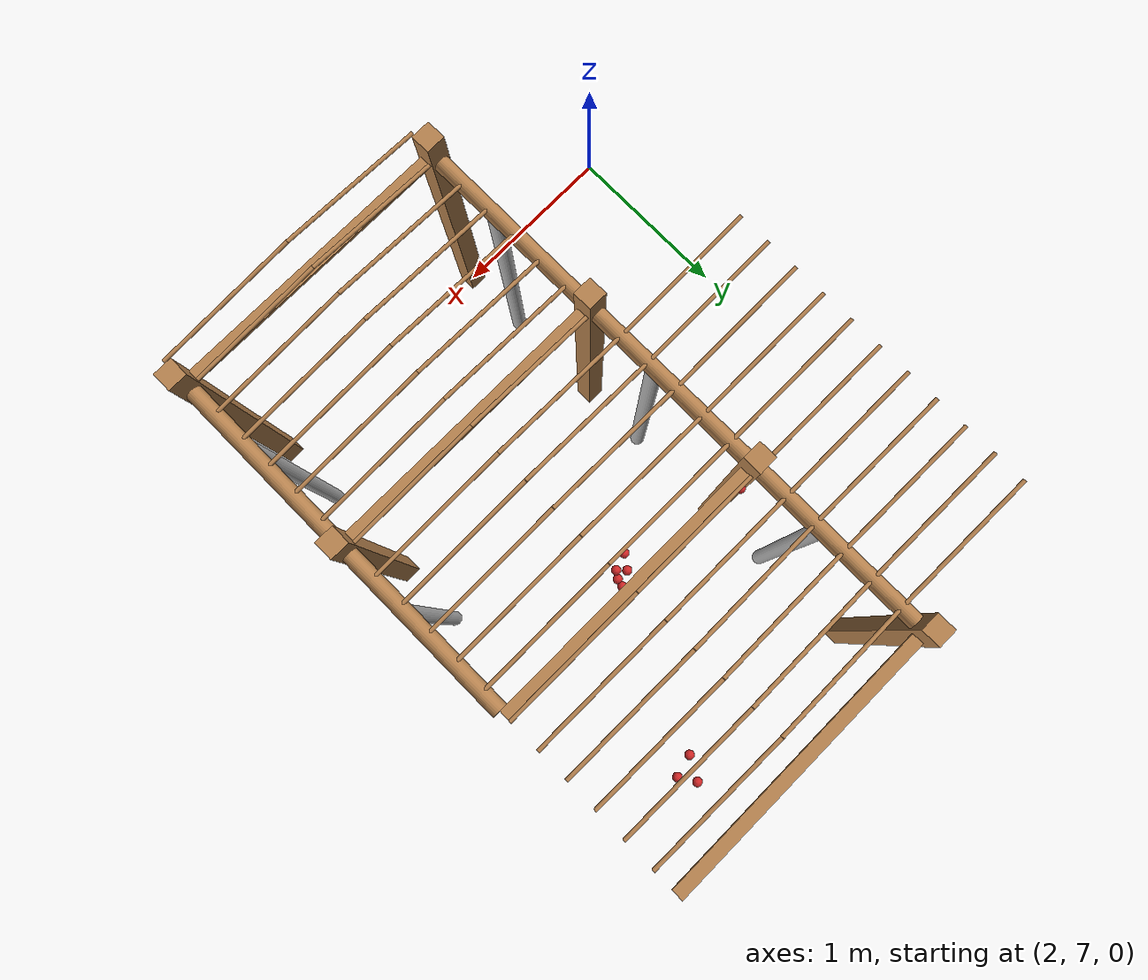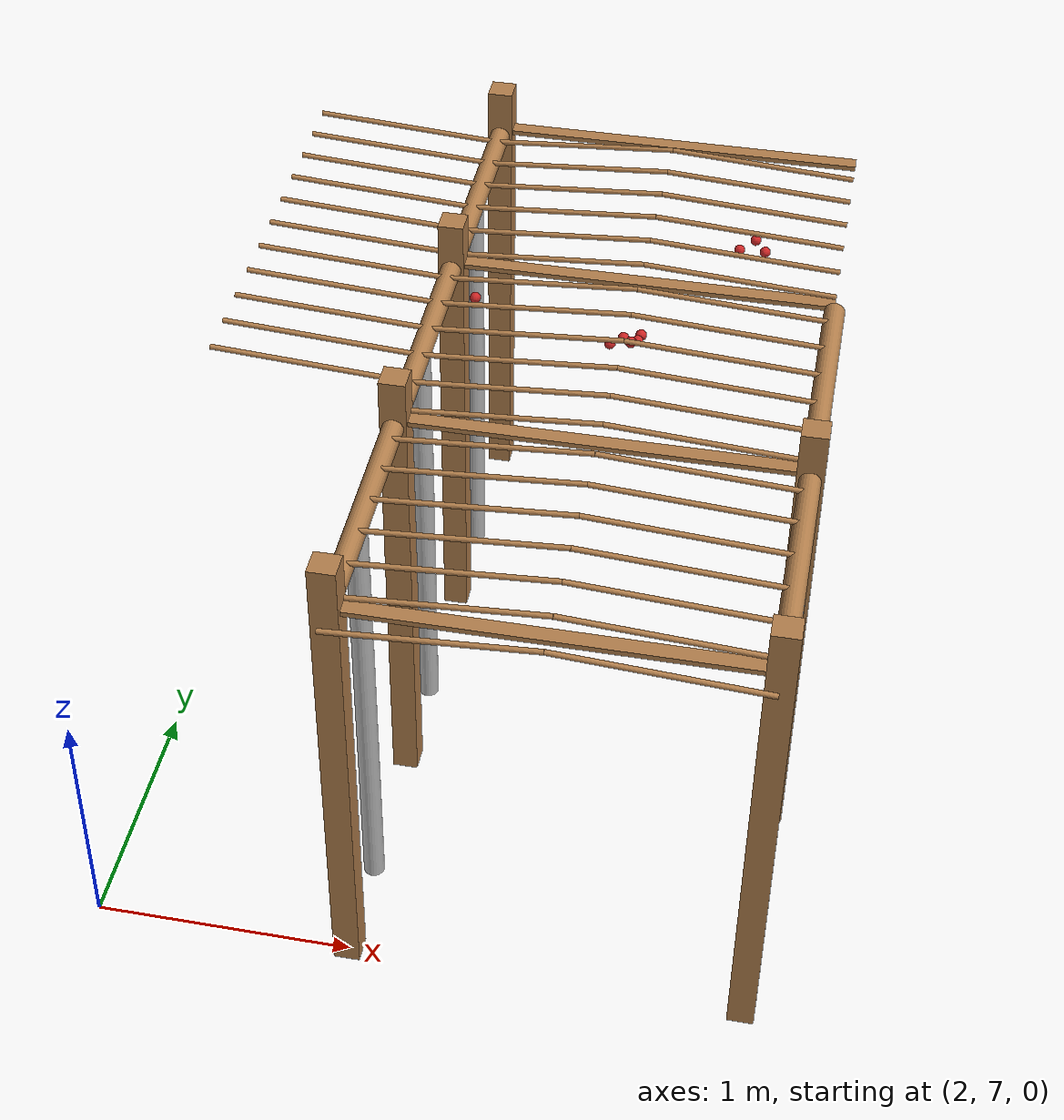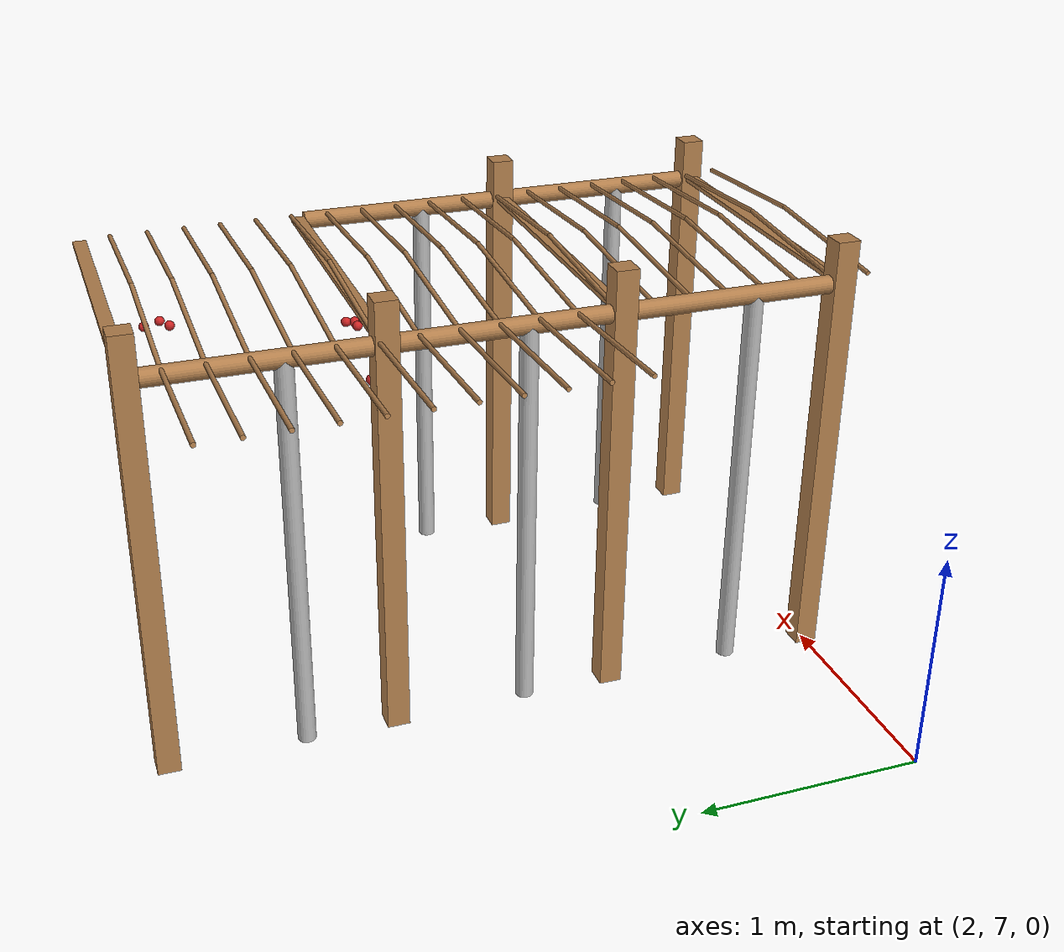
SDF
<sdf version="1.4">
 <model name="pergola">
  <include><name>post_29</name><pose>3.0 7.0 0 0 0 0</pose><uri>model://post</uri></include>
  <include><name>post_30</name><pose>3.0 8.0 0 0 0 0</pose><uri>model://post</uri></include>
  <include><name>post_31</name><pose>3.0 9.0 0 0 0 0</pose><uri>model://post</uri></include>
  <include><name>post_32</name><pose>3.0 10.0 0 0 0 0</pose><uri>model://post</uri></include>
  <include><name>post_40</name><pose>4.5 7.0 0 0 0 0</pose><uri>model://post</uri></include>
  <include><name>post_41</name><pose>4.5 8.0 0 0 0 0</pose><uri>model://post</uri></include>
  <link name="beam_29">
   <pose>3.75 7.0 1.81 0 0 0</pose>
   <collision name="collision"><geometry><box><size>1.5 0.06 0.02</size></box></geometry></collision>
   <visual name="visual">
    <geometry><box><size>1.5 0.06 0.02</size></box></geometry>
    <material><script><name>Gazebo/Wood</name></script></material>
   </visual>
   <inertial>
    <mass>5</mass>
    <inertia>
     <ixx>0.0016666666666666668</ixx>
     <ixy>0.0</ixy>
     <ixz>0.0</ixz>
     <iyy>0.9390000000000001</iyy>
     <iyz>0.0</iyz>
     <izz>0.9376666666666665</izz>
    </inertia>
   </inertial>
  </link>
  <link name="beam_30">
   <pose>3.75 8.0 1.81 0 0 0</pose>
   <collision name="collision"><geometry><box><size>1.5 0.06 0.02</size></box></geometry></collision>
   <visual name="visual">
    <geometry><box><size>1.5 0.06 0.02</size></box></geometry>
    <material><script><name>Gazebo/Wood</name></script></material>
   </visual>
   <inertial>
    <mass>5</mass>
    <inertia>
     <ixx>0.0016666666666666668</ixx>
     <ixy>0.0</ixy>
     <ixz>0.0</ixz>
     <iyy>0.9390000000000001</iyy>
     <iyz>0.0</iyz>
     <izz>0.9376666666666665</izz>
    </inertia>
   </inertial>
  </link>
  <link name="beam_31">
   <pose>3.75 9.0 1.81 0 0 0</pose>
   <collision name="collision"><geometry><box><size>1.5 0.06 0.02</size></box></geometry></collision>
   <visual name="visual">
    <geometry><box><size>1.5 0.06 0.02</size></box></geometry>
    <material><script><name>Gazebo/Wood</name></script></material>
   </visual>
   <inertial>
    <mass>5</mass>
    <inertia>
     <ixx>0.0016666666666666668</ixx>
     <ixy>0.0</ixy>
     <ixz>0.0</ixz>
     <iyy>0.9390000000000001</iyy>
     <iyz>0.0</iyz>
     <izz>0.9376666666666665</izz>
    </inertia>
   </inertial>
  </link>
  <link name="beam_32">
   <pose>3.75 10.0 1.81 0 0 0</pose>
   <collision name="collision"><geometry><box><size>1.5 0.06 0.02</size></box></geometry></collision>
   <visual name="visual">
    <geometry><box><size>1.5 0.06 0.02</size></box></geometry>
    <material><script><name>Gazebo/Wood</name></script></material>
   </visual>
   <inertial>
    <mass>5</mass>
    <inertia>
     <ixx>0.0016666666666666668</ixx>
     <ixy>0.0</ixy>
     <ixz>0.0</ixz>
     <iyy>0.9390000000000001</iyy>
     <iyz>0.0</iyz>
     <izz>0.9376666666666665</izz>
    </inertia>
   </inertial>
  </link>
  <include><name>tree_27</name><pose>3.0 7.4 0 0 0 0</pose><uri>model://tree_trunk</uri></include>
  <include><name>tree_28</name><pose>3.0 8.4 0 0 0 0</pose><uri>model://tree_trunk</uri></include>
  <include><name>tree_29</name><pose>3.0 9.4 0 0 0 0</pose><uri>model://tree_trunk</uri></include>
  <include><name>tree_37</name><pose>4.5 7.4 0 0 0 0</pose><uri>model://tree_trunk</uri></include>
  <include><name>tree_38</name><pose>4.5 8.4 0 0 0 0</pose><uri>model://tree_trunk</uri></include>
  <link name="baseBranch_27">
   <pose>3.0 7.5 1.8 1.5707963267948966 0 0</pose>
   <collision name="collision">
    <geometry><cylinder><radius>0.04</radius><length>0.94</length></cylinder></geometry>
   </collision>
   <visual name="visual">
    <geometry><cylinder><radius>0.04</radius><length>0.94</length></cylinder></geometry>
    <material><script><name>Gazebo/WoodFloor</name></script></material>
   </visual>
   <inertial>
    <mass>10</mass>
    <inertia>
     <ixx>0.7403333333333334</ixx>
     <ixy>0.0</ixy>
     <ixz>0.0</ixz>
     <iyy>0.7403333333333334</iyy>
     <iyz>0.0</iyz>
     <izz>0.008</izz>
    </inertia>
   </inertial>
  </link>
  <link name="baseBranch_28">
   <pose>3.0 8.5 1.8 1.5707963267948966 0 0</pose>
   <collision name="collision">
    <geometry><cylinder><radius>0.04</radius><length>0.94</length></cylinder></geometry>
   </collision>
   <visual name="visual">
    <geometry><cylinder><radius>0.04</radius><length>0.94</length></cylinder></geometry>
    <material><script><name>Gazebo/WoodFloor</name></script></material>
   </visual>
   <inertial>
    <mass>10</mass>
    <inertia>
     <ixx>0.7403333333333334</ixx>
     <ixy>0.0</ixy>
     <ixz>0.0</ixz>
     <iyy>0.7403333333333334</iyy>
     <iyz>0.0</iyz>
     <izz>0.008</izz>
    </inertia>
   </inertial>
  </link>
  <link name="baseBranch_29">
   <pose>3.0 9.5 1.8 1.5707963267948966 0 0</pose>
   <collision name="collision">
    <geometry><cylinder><radius>0.04</radius><length>0.94</length></cylinder></geometry>
   </collision>
   <visual name="visual">
    <geometry><cylinder><radius>0.04</radius><length>0.94</length></cylinder></geometry>
    <material><script><name>Gazebo/WoodFloor</name></script></material>
   </visual>
   <inertial>
    <mass>10</mass>
    <inertia>
     <ixx>0.7403333333333334</ixx>
     <ixy>0.0</ixy>
     <ixz>0.0</ixz>
     <iyy>0.7403333333333334</iyy>
     <iyz>0.0</iyz>
     <izz>0.008</izz>
    </inertia>
   </inertial>
  </link>
  <link name="baseBranch_37">
   <pose>4.5 7.5 1.8 1.5707963267948966 0 0</pose>
   <collision name="collision">
    <geometry><cylinder><radius>0.04</radius><length>0.94</length></cylinder></geometry>
   </collision>
   <visual name="visual">
    <geometry><cylinder><radius>0.04</radius><length>0.94</length></cylinder></geometry>
    <material><script><name>Gazebo/WoodFloor</name></script></material>
   </visual>
   <inertial>
    <mass>10</mass>
    <inertia>
     <ixx>0.7403333333333334</ixx>
     <ixy>0.0</ixy>
     <ixz>0.0</ixz>
     <iyy>0.7403333333333334</iyy>
     <iyz>0.0</iyz>
     <izz>0.008</izz>
    </inertia>
   </inertial>
  </link>
  <link name="baseBranch_38">
   <pose>4.5 8.5 1.8 1.5707963267948966 0 0</pose>
   <collision name="collision">
    <geometry><cylinder><radius>0.04</radius><length>0.94</length></cylinder></geometry>
   </collision>
   <visual name="visual">
    <geometry><cylinder><radius>0.04</radius><length>0.94</length></cylinder></geometry>
    <material><script><name>Gazebo/WoodFloor</name></script></material>
   </visual>
   <inertial>
    <mass>10</mass>
    <inertia>
     <ixx>0.7403333333333334</ixx>
     <ixy>0.0</ixy>
     <ixz>0.0</ixz>
     <iyy>0.7403333333333334</iyy>
     <iyz>0.0</iyz>
     <izz>0.008</izz>
    </inertia>
   </inertial>
  </link>
  <link name="vine_219">
   <pose>2.625 8.196666666666665 1.85 0 -1.5042281630190728 0</pose>
   <collision name="collision">
    <geometry><cylinder><radius>0.01</radius><length>0.7516648189186453</length></cylinder></geometry>
   </collision>
   <visual name="visual">
    <geometry><cylinder><radius>0.01</radius><length>0.7516648189186453</length></cylinder></geometry>
    <material><script><name>Gazebo/WoodFloor</name></script></material>
   </visual>
   <inertial>
    <mass>5</mass>
    <inertia>
     <ixx>0.23554166666666657</ixx>
     <ixy>0.0</ixy>
     <ixz>0.0</ixz>
     <iyy>0.23554166666666657</iyy>
     <iyz>0.0</iyz>
     <izz>0.00025</izz>
    </inertia>
   </inertial>
  </link>
  <link name="vine_221">
   <pose>2.625 8.363333333333332 1.85 0 -1.5042281630190728 0</pose>
   <collision name="collision">
    <geometry><cylinder><radius>0.01</radius><length>0.7516648189186453</length></cylinder></geometry>
   </collision>
   <visual name="visual">
    <geometry><cylinder><radius>0.01</radius><length>0.7516648189186453</length></cylinder></geometry>
    <material><script><name>Gazebo/WoodFloor</name></script></material>
   </visual>
   <inertial>
    <mass>5</mass>
    <inertia>
     <ixx>0.23554166666666657</ixx>
     <ixy>0.0</ixy>
     <ixz>0.0</ixz>
     <iyy>0.23554166666666657</iyy>
     <iyz>0.0</iyz>
     <izz>0.00025</izz>
    </inertia>
   </inertial>
  </link>
  <link name="vine_223">
   <pose>2.625 8.53 1.85 0 -1.5042281630190728 0</pose>
   <collision name="collision">
    <geometry><cylinder><radius>0.01</radius><length>0.7516648189186453</length></cylinder></geometry>
   </collision>
   <visual name="visual">
    <geometry><cylinder><radius>0.01</radius><length>0.7516648189186453</length></cylinder></geometry>
    <material><script><name>Gazebo/WoodFloor</name></script></material>
   </visual>
   <inertial>
    <mass>5</mass>
    <inertia>
     <ixx>0.23554166666666657</ixx>
     <ixy>0.0</ixy>
     <ixz>0.0</ixz>
     <iyy>0.23554166666666657</iyy>
     <iyz>0.0</iyz>
     <izz>0.00025</izz>
    </inertia>
   </inertial>
  </link>
  <link name="vine_225">
   <pose>2.625 8.696666666666665 1.85 0 -1.5042281630190728 0</pose>
   <collision name="collision">
    <geometry><cylinder><radius>0.01</radius><length>0.7516648189186453</length></cylinder></geometry>
   </collision>
   <visual name="visual">
    <geometry><cylinder><radius>0.01</radius><length>0.7516648189186453</length></cylinder></geometry>
    <material><script><name>Gazebo/WoodFloor</name></script></material>
   </visual>
   <inertial>
    <mass>5</mass>
    <inertia>
     <ixx>0.23554166666666657</ixx>
     <ixy>0.0</ixy>
     <ixz>0.0</ixz>
     <iyy>0.23554166666666657</iyy>
     <iyz>0.0</iyz>
     <izz>0.00025</izz>
    </inertia>
   </inertial>
  </link>
  <link name="vine_227">
   <pose>2.625 8.863333333333332 1.85 0 -1.5042281630190728 0</pose>
   <collision name="collision">
    <geometry><cylinder><radius>0.01</radius><length>0.7516648189186453</length></cylinder></geometry>
   </collision>
   <visual name="visual">
    <geometry><cylinder><radius>0.01</radius><length>0.7516648189186453</length></cylinder></geometry>
    <material><script><name>Gazebo/WoodFloor</name></script></material>
   </visual>
   <inertial>
    <mass>5</mass>
    <inertia>
     <ixx>0.23554166666666657</ixx>
     <ixy>0.0</ixy>
     <ixz>0.0</ixz>
     <iyy>0.23554166666666657</iyy>
     <iyz>0.0</iyz>
     <izz>0.00025</izz>
    </inertia>
   </inertial>
  </link>
  <link name="vine_229">
   <pose>2.625 9.03 1.85 0 -1.5042281630190728 0</pose>
   <collision name="collision">
    <geometry><cylinder><radius>0.01</radius><length>0.7516648189186453</length></cylinder></geometry>
   </collision>
   <visual name="visual">
    <geometry><cylinder><radius>0.01</radius><length>0.7516648189186453</length></cylinder></geometry>
    <material><script><name>Gazebo/WoodFloor</name></script></material>
   </visual>
   <inertial>
    <mass>5</mass>
    <inertia>
     <ixx>0.23554166666666657</ixx>
     <ixy>0.0</ixy>
     <ixz>0.0</ixz>
     <iyy>0.23554166666666657</iyy>
     <iyz>0.0</iyz>
     <izz>0.00025</izz>
    </inertia>
   </inertial>
  </link>
  <link name="vine_231">
   <pose>2.625 9.196666666666665 1.85 0 -1.5042281630190728 0</pose>
   <collision name="collision">
    <geometry><cylinder><radius>0.01</radius><length>0.7516648189186453</length></cylinder></geometry>
   </collision>
   <visual name="visual">
    <geometry><cylinder><radius>0.01</radius><length>0.7516648189186453</length></cylinder></geometry>
    <material><script><name>Gazebo/WoodFloor</name></script></material>
   </visual>
   <inertial>
    <mass>5</mass>
    <inertia>
     <ixx>0.23554166666666657</ixx>
     <ixy>0.0</ixy>
     <ixz>0.0</ixz>
     <iyy>0.23554166666666657</iyy>
     <iyz>0.0</iyz>
     <izz>0.00025</izz>
    </inertia>
   </inertial>
  </link>
  <link name="vine_233">
   <pose>2.625 9.363333333333332 1.85 0 -1.5042281630190728 0</pose>
   <collision name="collision">
    <geometry><cylinder><radius>0.01</radius><length>0.7516648189186453</length></cylinder></geometry>
   </collision>
   <visual name="visual">
    <geometry><cylinder><radius>0.01</radius><length>0.7516648189186453</length></cylinder></geometry>
    <material><script><name>Gazebo/WoodFloor</name></script></material>
   </visual>
   <inertial>
    <mass>5</mass>
    <inertia>
     <ixx>0.23554166666666657</ixx>
     <ixy>0.0</ixy>
     <ixz>0.0</ixz>
     <iyy>0.23554166666666657</iyy>
     <iyz>0.0</iyz>
     <izz>0.00025</izz>
    </inertia>
   </inertial>
  </link>
  <link name="vine_235">
   <pose>2.625 9.53 1.85 0 -1.5042281630190728 0</pose>
   <collision name="collision">
    <geometry><cylinder><radius>0.01</radius><length>0.7516648189186453</length></cylinder></geometry>
   </collision>
   <visual name="visual">
    <geometry><cylinder><radius>0.01</radius><length>0.7516648189186453</length></cylinder></geometry>
    <material><script><name>Gazebo/WoodFloor</name></script></material>
   </visual>
   <inertial>
    <mass>5</mass>
    <inertia>
     <ixx>0.23554166666666657</ixx>
     <ixy>0.0</ixy>
     <ixz>0.0</ixz>
     <iyy>0.23554166666666657</iyy>
     <iyz>0.0</iyz>
     <izz>0.00025</izz>
    </inertia>
   </inertial>
  </link>
  <link name="vine_237">
   <pose>2.625 9.696666666666665 1.85 0 -1.5042281630190728 0</pose>
   <collision name="collision">
    <geometry><cylinder><radius>0.01</radius><length>0.7516648189186453</length></cylinder></geometry>
   </collision>
   <visual name="visual">
    <geometry><cylinder><radius>0.01</radius><length>0.7516648189186453</length></cylinder></geometry>
    <material><script><name>Gazebo/WoodFloor</name></script></material>
   </visual>
   <inertial>
    <mass>5</mass>
    <inertia>
     <ixx>0.23554166666666657</ixx>
     <ixy>0.0</ixy>
     <ixz>0.0</ixz>
     <iyy>0.23554166666666657</iyy>
     <iyz>0.0</iyz>
     <izz>0.00025</izz>
    </inertia>
   </inertial>
  </link>
  <link name="vine_239">
   <pose>2.625 9.863333333333332 1.85 0 -1.5042281630190728 0</pose>
   <collision name="collision">
    <geometry><cylinder><radius>0.01</radius><length>0.7516648189186453</length></cylinder></geometry>
   </collision>
   <visual name="visual">
    <geometry><cylinder><radius>0.01</radius><length>0.7516648189186453</length></cylinder></geometry>
    <material><script><name>Gazebo/WoodFloor</name></script></material>
   </visual>
   <inertial>
    <mass>5</mass>
    <inertia>
     <ixx>0.23554166666666657</ixx>
     <ixy>0.0</ixy>
     <ixz>0.0</ixz>
     <iyy>0.23554166666666657</iyy>
     <iyz>0.0</iyz>
     <izz>0.00025</izz>
    </inertia>
   </inertial>
  </link>
  <link name="vine_322">
   <pose>3.375 6.863333333333333 1.85 0 1.5042281630190728 0</pose>
   <collision name="collision">
    <geometry><cylinder><radius>0.01</radius><length>0.7516648189186453</length></cylinder></geometry>
   </collision>
   <visual name="visual">
    <geometry><cylinder><radius>0.01</radius><length>0.7516648189186453</length></cylinder></geometry>
    <material><script><name>Gazebo/WoodFloor</name></script></material>
   </visual>
   <inertial>
    <mass>5</mass>
    <inertia>
     <ixx>0.23554166666666657</ixx>
     <ixy>0.0</ixy>
     <ixz>0.0</ixz>
     <iyy>0.23554166666666657</iyy>
     <iyz>0.0</iyz>
     <izz>0.00025</izz>
    </inertia>
   </inertial>
  </link>
  <link name="vine_323">
   <pose>4.125 6.863333333333333 1.85 0 -1.5042281630190728 0</pose>
   <collision name="collision">
    <geometry><cylinder><radius>0.01</radius><length>0.7516648189186453</length></cylinder></geometry>
   </collision>
   <visual name="visual">
    <geometry><cylinder><radius>0.01</radius><length>0.7516648189186453</length></cylinder></geometry>
    <material><script><name>Gazebo/WoodFloor</name></script></material>
   </visual>
   <inertial>
    <mass>5</mass>
    <inertia>
     <ixx>0.23554166666666657</ixx>
     <ixy>0.0</ixy>
     <ixz>0.0</ixz>
     <iyy>0.23554166666666657</iyy>
     <iyz>0.0</iyz>
     <izz>0.00025</izz>
    </inertia>
   </inertial>
  </link>
  <link name="vine_324">
   <pose>3.375 7.03 1.85 0 1.5042281630190728 0</pose>
   <collision name="collision">
    <geometry><cylinder><radius>0.01</radius><length>0.7516648189186453</length></cylinder></geometry>
   </collision>
   <visual name="visual">
    <geometry><cylinder><radius>0.01</radius><length>0.7516648189186453</length></cylinder></geometry>
    <material><script><name>Gazebo/WoodFloor</name></script></material>
   </visual>
   <inertial>
    <mass>5</mass>
    <inertia>
     <ixx>0.23554166666666657</ixx>
     <ixy>0.0</ixy>
     <ixz>0.0</ixz>
     <iyy>0.23554166666666657</iyy>
     <iyz>0.0</iyz>
     <izz>0.00025</izz>
    </inertia>
   </inertial>
  </link>
  <link name="vine_325">
   <pose>4.125 7.03 1.85 0 -1.5042281630190728 0</pose>
   <collision name="collision">
    <geometry><cylinder><radius>0.01</radius><length>0.7516648189186453</length></cylinder></geometry>
   </collision>
   <visual name="visual">
    <geometry><cylinder><radius>0.01</radius><length>0.7516648189186453</length></cylinder></geometry>
    <material><script><name>Gazebo/WoodFloor</name></script></material>
   </visual>
   <inertial>
    <mass>5</mass>
    <inertia>
     <ixx>0.23554166666666657</ixx>
     <ixy>0.0</ixy>
     <ixz>0.0</ixz>
     <iyy>0.23554166666666657</iyy>
     <iyz>0.0</iyz>
     <izz>0.00025</izz>
    </inertia>
   </inertial>
  </link>
  <link name="vine_326">
   <pose>3.375 7.196666666666666 1.85 0 1.5042281630190728 0</pose>
   <collision name="collision">
    <geometry><cylinder><radius>0.01</radius><length>0.7516648189186453</length></cylinder></geometry>
   </collision>
   <visual name="visual">
    <geometry><cylinder><radius>0.01</radius><length>0.7516648189186453</length></cylinder></geometry>
    <material><script><name>Gazebo/WoodFloor</name></script></material>
   </visual>
   <inertial>
    <mass>5</mass>
    <inertia>
     <ixx>0.23554166666666657</ixx>
     <ixy>0.0</ixy>
     <ixz>0.0</ixz>
     <iyy>0.23554166666666657</iyy>
     <iyz>0.0</iyz>
     <izz>0.00025</izz>
    </inertia>
   </inertial>
  </link>
  <link name="vine_327">
   <pose>4.125 7.196666666666666 1.85 0 -1.5042281630190728 0</pose>
   <collision name="collision">
    <geometry><cylinder><radius>0.01</radius><length>0.7516648189186453</length></cylinder></geometry>
   </collision>
   <visual name="visual">
    <geometry><cylinder><radius>0.01</radius><length>0.7516648189186453</length></cylinder></geometry>
    <material><script><name>Gazebo/WoodFloor</name></script></material>
   </visual>
   <inertial>
    <mass>5</mass>
    <inertia>
     <ixx>0.23554166666666657</ixx>
     <ixy>0.0</ixy>
     <ixz>0.0</ixz>
     <iyy>0.23554166666666657</iyy>
     <iyz>0.0</iyz>
     <izz>0.00025</izz>
    </inertia>
   </inertial>
  </link>
  <link name="vine_328">
   <pose>3.375 7.363333333333333 1.85 0 1.5042281630190728 0</pose>
   <collision name="collision">
    <geometry><cylinder><radius>0.01</radius><length>0.7516648189186453</length></cylinder></geometry>
   </collision>
   <visual name="visual">
    <geometry><cylinder><radius>0.01</radius><length>0.7516648189186453</length></cylinder></geometry>
    <material><script><name>Gazebo/WoodFloor</name></script></material>
   </visual>
   <inertial>
    <mass>5</mass>
    <inertia>
     <ixx>0.23554166666666657</ixx>
     <ixy>0.0</ixy>
     <ixz>0.0</ixz>
     <iyy>0.23554166666666657</iyy>
     <iyz>0.0</iyz>
     <izz>0.00025</izz>
    </inertia>
   </inertial>
  </link>
  <link name="vine_329">
   <pose>4.125 7.363333333333333 1.85 0 -1.5042281630190728 0</pose>
   <collision name="collision">
    <geometry><cylinder><radius>0.01</radius><length>0.7516648189186453</length></cylinder></geometry>
   </collision>
   <visual name="visual">
    <geometry><cylinder><radius>0.01</radius><length>0.7516648189186453</length></cylinder></geometry>
    <material><script><name>Gazebo/WoodFloor</name></script></material>
   </visual>
   <inertial>
    <mass>5</mass>
    <inertia>
     <ixx>0.23554166666666657</ixx>
     <ixy>0.0</ixy>
     <ixz>0.0</ixz>
     <iyy>0.23554166666666657</iyy>
     <iyz>0.0</iyz>
     <izz>0.00025</izz>
    </inertia>
   </inertial>
  </link>
  <link name="vine_330">
   <pose>3.375 7.53 1.85 0 1.5042281630190728 0</pose>
   <collision name="collision">
    <geometry><cylinder><radius>0.01</radius><length>0.7516648189186453</length></cylinder></geometry>
   </collision>
   <visual name="visual">
    <geometry><cylinder><radius>0.01</radius><length>0.7516648189186453</length></cylinder></geometry>
    <material><script><name>Gazebo/WoodFloor</name></script></material>
   </visual>
   <inertial>
    <mass>5</mass>
    <inertia>
     <ixx>0.23554166666666657</ixx>
     <ixy>0.0</ixy>
     <ixz>0.0</ixz>
     <iyy>0.23554166666666657</iyy>
     <iyz>0.0</iyz>
     <izz>0.00025</izz>
    </inertia>
   </inertial>
  </link>
  <link name="vine_331">
   <pose>4.125 7.53 1.85 0 -1.5042281630190728 0</pose>
   <collision name="collision">
    <geometry><cylinder><radius>0.01</radius><length>0.7516648189186453</length></cylinder></geometry>
   </collision>
   <visual name="visual">
    <geometry><cylinder><radius>0.01</radius><length>0.7516648189186453</length></cylinder></geometry>
    <material><script><name>Gazebo/WoodFloor</name></script></material>
   </visual>
   <inertial>
    <mass>5</mass>
    <inertia>
     <ixx>0.23554166666666657</ixx>
     <ixy>0.0</ixy>
     <ixz>0.0</ixz>
     <iyy>0.23554166666666657</iyy>
     <iyz>0.0</iyz>
     <izz>0.00025</izz>
    </inertia>
   </inertial>
  </link>
  <link name="vine_332">
   <pose>3.375 7.696666666666666 1.85 0 1.5042281630190728 0</pose>
   <collision name="collision">
    <geometry><cylinder><radius>0.01</radius><length>0.7516648189186453</length></cylinder></geometry>
   </collision>
   <visual name="visual">
    <geometry><cylinder><radius>0.01</radius><length>0.7516648189186453</length></cylinder></geometry>
    <material><script><name>Gazebo/WoodFloor</name></script></material>
   </visual>
   <inertial>
    <mass>5</mass>
    <inertia>
     <ixx>0.23554166666666657</ixx>
     <ixy>0.0</ixy>
     <ixz>0.0</ixz>
     <iyy>0.23554166666666657</iyy>
     <iyz>0.0</iyz>
     <izz>0.00025</izz>
    </inertia>
   </inertial>
  </link>
  <link name="vine_333">
   <pose>4.125 7.696666666666666 1.85 0 -1.5042281630190728 0</pose>
   <collision name="collision">
    <geometry><cylinder><radius>0.01</radius><length>0.7516648189186453</length></cylinder></geometry>
   </collision>
   <visual name="visual">
    <geometry><cylinder><radius>0.01</radius><length>0.7516648189186453</length></cylinder></geometry>
    <material><script><name>Gazebo/WoodFloor</name></script></material>
   </visual>
   <inertial>
    <mass>5</mass>
    <inertia>
     <ixx>0.23554166666666657</ixx>
     <ixy>0.0</ixy>
     <ixz>0.0</ixz>
     <iyy>0.23554166666666657</iyy>
     <iyz>0.0</iyz>
     <izz>0.00025</izz>
    </inertia>
   </inertial>
  </link>
  <link name="vine_334">
   <pose>3.375 7.863333333333333 1.85 0 1.5042281630190728 0</pose>
   <collision name="collision">
    <geometry><cylinder><radius>0.01</radius><length>0.7516648189186453</length></cylinder></geometry>
   </collision>
   <visual name="visual">
    <geometry><cylinder><radius>0.01</radius><length>0.7516648189186453</length></cylinder></geometry>
    <material><script><name>Gazebo/WoodFloor</name></script></material>
   </visual>
   <inertial>
    <mass>5</mass>
    <inertia>
     <ixx>0.23554166666666657</ixx>
     <ixy>0.0</ixy>
     <ixz>0.0</ixz>
     <iyy>0.23554166666666657</iyy>
     <iyz>0.0</iyz>
     <izz>0.00025</izz>
    </inertia>
   </inertial>
  </link>
  <link name="vine_335">
   <pose>4.125 7.863333333333333 1.85 0 -1.5042281630190728 0</pose>
   <collision name="collision">
    <geometry><cylinder><radius>0.01</radius><length>0.7516648189186453</length></cylinder></geometry>
   </collision>
   <visual name="visual">
    <geometry><cylinder><radius>0.01</radius><length>0.7516648189186453</length></cylinder></geometry>
    <material><script><name>Gazebo/WoodFloor</name></script></material>
   </visual>
   <inertial>
    <mass>5</mass>
    <inertia>
     <ixx>0.23554166666666657</ixx>
     <ixy>0.0</ixy>
     <ixz>0.0</ixz>
     <iyy>0.23554166666666657</iyy>
     <iyz>0.0</iyz>
     <izz>0.00025</izz>
    </inertia>
   </inertial>
  </link>
  <link name="vine_336">
   <pose>3.375 8.03 1.85 0 1.5042281630190728 0</pose>
   <collision name="collision">
    <geometry><cylinder><radius>0.01</radius><length>0.7516648189186453</length></cylinder></geometry>
   </collision>
   <visual name="visual">
    <geometry><cylinder><radius>0.01</radius><length>0.7516648189186453</length></cylinder></geometry>
    <material><script><name>Gazebo/WoodFloor</name></script></material>
   </visual>
   <inertial>
    <mass>5</mass>
    <inertia>
     <ixx>0.23554166666666657</ixx>
     <ixy>0.0</ixy>
     <ixz>0.0</ixz>
     <iyy>0.23554166666666657</iyy>
     <iyz>0.0</iyz>
     <izz>0.00025</izz>
    </inertia>
   </inertial>
  </link>
  <link name="vine_337">
   <pose>4.125 8.03 1.85 0 -1.5042281630190728 0</pose>
   <collision name="collision">
    <geometry><cylinder><radius>0.01</radius><length>0.7516648189186453</length></cylinder></geometry>
   </collision>
   <visual name="visual">
    <geometry><cylinder><radius>0.01</radius><length>0.7516648189186453</length></cylinder></geometry>
    <material><script><name>Gazebo/WoodFloor</name></script></material>
   </visual>
   <inertial>
    <mass>5</mass>
    <inertia>
     <ixx>0.23554166666666657</ixx>
     <ixy>0.0</ixy>
     <ixz>0.0</ixz>
     <iyy>0.23554166666666657</iyy>
     <iyz>0.0</iyz>
     <izz>0.00025</izz>
    </inertia>
   </inertial>
  </link>
  <link name="vine_338">
   <pose>3.375 8.196666666666665 1.85 0 1.5042281630190728 0</pose>
   <collision name="collision">
    <geometry><cylinder><radius>0.01</radius><length>0.7516648189186453</length></cylinder></geometry>
   </collision>
   <visual name="visual">
    <geometry><cylinder><radius>0.01</radius><length>0.7516648189186453</length></cylinder></geometry>
    <material><script><name>Gazebo/WoodFloor</name></script></material>
   </visual>
   <inertial>
    <mass>5</mass>
    <inertia>
     <ixx>0.23554166666666657</ixx>
     <ixy>0.0</ixy>
     <ixz>0.0</ixz>
     <iyy>0.23554166666666657</iyy>
     <iyz>0.0</iyz>
     <izz>0.00025</izz>
    </inertia>
   </inertial>
  </link>
  <link name="vine_339">
   <pose>4.125 8.196666666666665 1.85 0 -1.5042281630190728 0</pose>
   <collision name="collision">
    <geometry><cylinder><radius>0.01</radius><length>0.7516648189186453</length></cylinder></geometry>
   </collision>
   <visual name="visual">
    <geometry><cylinder><radius>0.01</radius><length>0.7516648189186453</length></cylinder></geometry>
    <material><script><name>Gazebo/WoodFloor</name></script></material>
   </visual>
   <inertial>
    <mass>5</mass>
    <inertia>
     <ixx>0.23554166666666657</ixx>
     <ixy>0.0</ixy>
     <ixz>0.0</ixz>
     <iyy>0.23554166666666657</iyy>
     <iyz>0.0</iyz>
     <izz>0.00025</izz>
    </inertia>
   </inertial>
  </link>
  <link name="vine_340">
   <pose>3.375 8.363333333333332 1.85 0 1.5042281630190728 0</pose>
   <collision name="collision">
    <geometry><cylinder><radius>0.01</radius><length>0.7516648189186453</length></cylinder></geometry>
   </collision>
   <visual name="visual">
    <geometry><cylinder><radius>0.01</radius><length>0.7516648189186453</length></cylinder></geometry>
    <material><script><name>Gazebo/WoodFloor</name></script></material>
   </visual>
   <inertial>
    <mass>5</mass>
    <inertia>
     <ixx>0.23554166666666657</ixx>
     <ixy>0.0</ixy>
     <ixz>0.0</ixz>
     <iyy>0.23554166666666657</iyy>
     <iyz>0.0</iyz>
     <izz>0.00025</izz>
    </inertia>
   </inertial>
  </link>
  <link name="vine_341">
   <pose>4.125 8.363333333333332 1.85 0 -1.5042281630190728 0</pose>
   <collision name="collision">
    <geometry><cylinder><radius>0.01</radius><length>0.7516648189186453</length></cylinder></geometry>
   </collision>
   <visual name="visual">
    <geometry><cylinder><radius>0.01</radius><length>0.7516648189186453</length></cylinder></geometry>
    <material><script><name>Gazebo/WoodFloor</name></script></material>
   </visual>
   <inertial>
    <mass>5</mass>
    <inertia>
     <ixx>0.23554166666666657</ixx>
     <ixy>0.0</ixy>
     <ixz>0.0</ixz>
     <iyy>0.23554166666666657</iyy>
     <iyz>0.0</iyz>
     <izz>0.00025</izz>
    </inertia>
   </inertial>
  </link>
  <link name="vine_342">
   <pose>3.375 8.53 1.85 0 1.5042281630190728 0</pose>
   <collision name="collision">
    <geometry><cylinder><radius>0.01</radius><length>0.7516648189186453</length></cylinder></geometry>
   </collision>
   <visual name="visual">
    <geometry><cylinder><radius>0.01</radius><length>0.7516648189186453</length></cylinder></geometry>
    <material><script><name>Gazebo/WoodFloor</name></script></material>
   </visual>
   <inertial>
    <mass>5</mass>
    <inertia>
     <ixx>0.23554166666666657</ixx>
     <ixy>0.0</ixy>
     <ixz>0.0</ixz>
     <iyy>0.23554166666666657</iyy>
     <iyz>0.0</iyz>
     <izz>0.00025</izz>
    </inertia>
   </inertial>
  </link>
  <link name="vine_343">
   <pose>4.125 8.53 1.85 0 -1.5042281630190728 0</pose>
   <collision name="collision">
    <geometry><cylinder><radius>0.01</radius><length>0.7516648189186453</length></cylinder></geometry>
   </collision>
   <visual name="visual">
    <geometry><cylinder><radius>0.01</radius><length>0.7516648189186453</length></cylinder></geometry>
    <material><script><name>Gazebo/WoodFloor</name></script></material>
   </visual>
   <inertial>
    <mass>5</mass>
    <inertia>
     <ixx>0.23554166666666657</ixx>
     <ixy>0.0</ixy>
     <ixz>0.0</ixz>
     <iyy>0.23554166666666657</iyy>
     <iyz>0.0</iyz>
     <izz>0.00025</izz>
    </inertia>
   </inertial>
  </link>
  <link name="vine_344">
   <pose>3.375 8.696666666666665 1.85 0 1.5042281630190728 0</pose>
   <collision name="collision">
    <geometry><cylinder><radius>0.01</radius><length>0.7516648189186453</length></cylinder></geometry>
   </collision>
   <visual name="visual">
    <geometry><cylinder><radius>0.01</radius><length>0.7516648189186453</length></cylinder></geometry>
    <material><script><name>Gazebo/WoodFloor</name></script></material>
   </visual>
   <inertial>
    <mass>5</mass>
    <inertia>
     <ixx>0.23554166666666657</ixx>
     <ixy>0.0</ixy>
     <ixz>0.0</ixz>
     <iyy>0.23554166666666657</iyy>
     <iyz>0.0</iyz>
     <izz>0.00025</izz>
    </inertia>
   </inertial>
  </link>
  <link name="vine_345">
   <pose>4.125 8.696666666666665 1.85 0 -1.5042281630190728 0</pose>
   <collision name="collision">
    <geometry><cylinder><radius>0.01</radius><length>0.7516648189186453</length></cylinder></geometry>
   </collision>
   <visual name="visual">
    <geometry><cylinder><radius>0.01</radius><length>0.7516648189186453</length></cylinder></geometry>
    <material><script><name>Gazebo/WoodFloor</name></script></material>
   </visual>
   <inertial>
    <mass>5</mass>
    <inertia>
     <ixx>0.23554166666666657</ixx>
     <ixy>0.0</ixy>
     <ixz>0.0</ixz>
     <iyy>0.23554166666666657</iyy>
     <iyz>0.0</iyz>
     <izz>0.00025</izz>
    </inertia>
   </inertial>
  </link>
  <link name="vine_346">
   <pose>3.375 8.863333333333332 1.85 0 1.5042281630190728 0</pose>
   <collision name="collision">
    <geometry><cylinder><radius>0.01</radius><length>0.7516648189186453</length></cylinder></geometry>
   </collision>
   <visual name="visual">
    <geometry><cylinder><radius>0.01</radius><length>0.7516648189186453</length></cylinder></geometry>
    <material><script><name>Gazebo/WoodFloor</name></script></material>
   </visual>
   <inertial>
    <mass>5</mass>
    <inertia>
     <ixx>0.23554166666666657</ixx>
     <ixy>0.0</ixy>
     <ixz>0.0</ixz>
     <iyy>0.23554166666666657</iyy>
     <iyz>0.0</iyz>
     <izz>0.00025</izz>
    </inertia>
   </inertial>
  </link>
  <link name="vine_347">
   <pose>4.125 8.863333333333332 1.85 0 -1.5042281630190728 0</pose>
   <collision name="collision">
    <geometry><cylinder><radius>0.01</radius><length>0.7516648189186453</length></cylinder></geometry>
   </collision>
   <visual name="visual">
    <geometry><cylinder><radius>0.01</radius><length>0.7516648189186453</length></cylinder></geometry>
    <material><script><name>Gazebo/WoodFloor</name></script></material>
   </visual>
   <inertial>
    <mass>5</mass>
    <inertia>
     <ixx>0.23554166666666657</ixx>
     <ixy>0.0</ixy>
     <ixz>0.0</ixz>
     <iyy>0.23554166666666657</iyy>
     <iyz>0.0</iyz>
     <izz>0.00025</izz>
    </inertia>
   </inertial>
  </link>
  <link name="vine_348">
   <pose>3.375 9.03 1.85 0 1.5042281630190728 0</pose>
   <collision name="collision">
    <geometry><cylinder><radius>0.01</radius><length>0.7516648189186453</length></cylinder></geometry>
   </collision>
   <visual name="visual">
    <geometry><cylinder><radius>0.01</radius><length>0.7516648189186453</length></cylinder></geometry>
    <material><script><name>Gazebo/WoodFloor</name></script></material>
   </visual>
   <inertial>
    <mass>5</mass>
    <inertia>
     <ixx>0.23554166666666657</ixx>
     <ixy>0.0</ixy>
     <ixz>0.0</ixz>
     <iyy>0.23554166666666657</iyy>
     <iyz>0.0</iyz>
     <izz>0.00025</izz>
    </inertia>
   </inertial>
  </link>
  <link name="vine_349">
   <pose>4.125 9.03 1.85 0 -1.5042281630190728 0</pose>
   <collision name="collision">
    <geometry><cylinder><radius>0.01</radius><length>0.7516648189186453</length></cylinder></geometry>
   </collision>
   <visual name="visual">
    <geometry><cylinder><radius>0.01</radius><length>0.7516648189186453</length></cylinder></geometry>
    <material><script><name>Gazebo/WoodFloor</name></script></material>
   </visual>
   <inertial>
    <mass>5</mass>
    <inertia>
     <ixx>0.23554166666666657</ixx>
     <ixy>0.0</ixy>
     <ixz>0.0</ixz>
     <iyy>0.23554166666666657</iyy>
     <iyz>0.0</iyz>
     <izz>0.00025</izz>
    </inertia>
   </inertial>
  </link>
  <link name="vine_350">
   <pose>3.375 9.196666666666665 1.85 0 1.5042281630190728 0</pose>
   <collision name="collision">
    <geometry><cylinder><radius>0.01</radius><length>0.7516648189186453</length></cylinder></geometry>
   </collision>
   <visual name="visual">
    <geometry><cylinder><radius>0.01</radius><length>0.7516648189186453</length></cylinder></geometry>
    <material><script><name>Gazebo/WoodFloor</name></script></material>
   </visual>
   <inertial>
    <mass>5</mass>
    <inertia>
     <ixx>0.23554166666666657</ixx>
     <ixy>0.0</ixy>
     <ixz>0.0</ixz>
     <iyy>0.23554166666666657</iyy>
     <iyz>0.0</iyz>
     <izz>0.00025</izz>
    </inertia>
   </inertial>
  </link>
  <link name="vine_351">
   <pose>4.125 9.196666666666665 1.85 0 -1.5042281630190728 0</pose>
   <collision name="collision">
    <geometry><cylinder><radius>0.01</radius><length>0.7516648189186453</length></cylinder></geometry>
   </collision>
   <visual name="visual">
    <geometry><cylinder><radius>0.01</radius><length>0.7516648189186453</length></cylinder></geometry>
    <material><script><name>Gazebo/WoodFloor</name></script></material>
   </visual>
   <inertial>
    <mass>5</mass>
    <inertia>
     <ixx>0.23554166666666657</ixx>
     <ixy>0.0</ixy>
     <ixz>0.0</ixz>
     <iyy>0.23554166666666657</iyy>
     <iyz>0.0</iyz>
     <izz>0.00025</izz>
    </inertia>
   </inertial>
  </link>
  <link name="vine_352">
   <pose>3.375 9.363333333333332 1.85 0 1.5042281630190728 0</pose>
   <collision name="collision">
    <geometry><cylinder><radius>0.01</radius><length>0.7516648189186453</length></cylinder></geometry>
   </collision>
   <visual name="visual">
    <geometry><cylinder><radius>0.01</radius><length>0.7516648189186453</length></cylinder></geometry>
    <material><script><name>Gazebo/WoodFloor</name></script></material>
   </visual>
   <inertial>
    <mass>5</mass>
    <inertia>
     <ixx>0.23554166666666657</ixx>
     <ixy>0.0</ixy>
     <ixz>0.0</ixz>
     <iyy>0.23554166666666657</iyy>
     <iyz>0.0</iyz>
     <izz>0.00025</izz>
    </inertia>
   </inertial>
  </link>
  <link name="vine_353">
   <pose>4.125 9.363333333333332 1.85 0 -1.5042281630190728 0</pose>
   <collision name="collision">
    <geometry><cylinder><radius>0.01</radius><length>0.7516648189186453</length></cylinder></geometry>
   </collision>
   <visual name="visual">
    <geometry><cylinder><radius>0.01</radius><length>0.7516648189186453</length></cylinder></geometry>
    <material><script><name>Gazebo/WoodFloor</name></script></material>
   </visual>
   <inertial>
    <mass>5</mass>
    <inertia>
     <ixx>0.23554166666666657</ixx>
     <ixy>0.0</ixy>
     <ixz>0.0</ixz>
     <iyy>0.23554166666666657</iyy>
     <iyz>0.0</iyz>
     <izz>0.00025</izz>
    </inertia>
   </inertial>
  </link>
  <link name="vine_354">
   <pose>3.375 9.53 1.85 0 1.5042281630190728 0</pose>
   <collision name="collision">
    <geometry><cylinder><radius>0.01</radius><length>0.7516648189186453</length></cylinder></geometry>
   </collision>
   <visual name="visual">
    <geometry><cylinder><radius>0.01</radius><length>0.7516648189186453</length></cylinder></geometry>
    <material><script><name>Gazebo/WoodFloor</name></script></material>
   </visual>
   <inertial>
    <mass>5</mass>
    <inertia>
     <ixx>0.23554166666666657</ixx>
     <ixy>0.0</ixy>
     <ixz>0.0</ixz>
     <iyy>0.23554166666666657</iyy>
     <iyz>0.0</iyz>
     <izz>0.00025</izz>
    </inertia>
   </inertial>
  </link>
  <link name="vine_355">
   <pose>4.125 9.53 1.85 0 -1.5042281630190728 0</pose>
   <collision name="collision">
    <geometry><cylinder><radius>0.01</radius><length>0.7516648189186453</length></cylinder></geometry>
   </collision>
   <visual name="visual">
    <geometry><cylinder><radius>0.01</radius><length>0.7516648189186453</length></cylinder></geometry>
    <material><script><name>Gazebo/WoodFloor</name></script></material>
   </visual>
   <inertial>
    <mass>5</mass>
    <inertia>
     <ixx>0.23554166666666657</ixx>
     <ixy>0.0</ixy>
     <ixz>0.0</ixz>
     <iyy>0.23554166666666657</iyy>
     <iyz>0.0</iyz>
     <izz>0.00025</izz>
    </inertia>
   </inertial>
  </link>
  <link name="vine_356">
   <pose>3.375 9.696666666666665 1.85 0 1.5042281630190728 0</pose>
   <collision name="collision">
    <geometry><cylinder><radius>0.01</radius><length>0.7516648189186453</length></cylinder></geometry>
   </collision>
   <visual name="visual">
    <geometry><cylinder><radius>0.01</radius><length>0.7516648189186453</length></cylinder></geometry>
    <material><script><name>Gazebo/WoodFloor</name></script></material>
   </visual>
   <inertial>
    <mass>5</mass>
    <inertia>
     <ixx>0.23554166666666657</ixx>
     <ixy>0.0</ixy>
     <ixz>0.0</ixz>
     <iyy>0.23554166666666657</iyy>
     <iyz>0.0</iyz>
     <izz>0.00025</izz>
    </inertia>
   </inertial>
  </link>
  <link name="vine_357">
   <pose>4.125 9.696666666666665 1.85 0 -1.5042281630190728 0</pose>
   <collision name="collision">
    <geometry><cylinder><radius>0.01</radius><length>0.7516648189186453</length></cylinder></geometry>
   </collision>
   <visual name="visual">
    <geometry><cylinder><radius>0.01</radius><length>0.7516648189186453</length></cylinder></geometry>
    <material><script><name>Gazebo/WoodFloor</name></script></material>
   </visual>
   <inertial>
    <mass>5</mass>
    <inertia>
     <ixx>0.23554166666666657</ixx>
     <ixy>0.0</ixy>
     <ixz>0.0</ixz>
     <iyy>0.23554166666666657</iyy>
     <iyz>0.0</iyz>
     <izz>0.00025</izz>
    </inertia>
   </inertial>
  </link>
  <link name="vine_358">
   <pose>3.375 9.863333333333332 1.85 0 1.5042281630190728 0</pose>
   <collision name="collision">
    <geometry><cylinder><radius>0.01</radius><length>0.7516648189186453</length></cylinder></geometry>
   </collision>
   <visual name="visual">
    <geometry><cylinder><radius>0.01</radius><length>0.7516648189186453</length></cylinder></geometry>
    <material><script><name>Gazebo/WoodFloor</name></script></material>
   </visual>
   <inertial>
    <mass>5</mass>
    <inertia>
     <ixx>0.23554166666666657</ixx>
     <ixy>0.0</ixy>
     <ixz>0.0</ixz>
     <iyy>0.23554166666666657</iyy>
     <iyz>0.0</iyz>
     <izz>0.00025</izz>
    </inertia>
   </inertial>
  </link>
  <link name="vine_359">
   <pose>4.125 9.863333333333332 1.85 0 -1.5042281630190728 0</pose>
   <collision name="collision">
    <geometry><cylinder><radius>0.01</radius><length>0.7516648189186453</length></cylinder></geometry>
   </collision>
   <visual name="visual">
    <geometry><cylinder><radius>0.01</radius><length>0.7516648189186453</length></cylinder></geometry>
    <material><script><name>Gazebo/WoodFloor</name></script></material>
   </visual>
   <inertial>
    <mass>5</mass>
    <inertia>
     <ixx>0.23554166666666657</ixx>
     <ixy>0.0</ixy>
     <ixz>0.0</ixz>
     <iyy>0.23554166666666657</iyy>
     <iyz>0.0</iyz>
     <izz>0.00025</izz>
    </inertia>
   </inertial>
  </link>
  <link name="fruit_14">
   <pose>3.652102788442005 8.869814423333342 1.5957047335762264 0 0 0</pose>
   <collision name="fruit_collision_14"><geometry><sphere><radius>0.022</radius></sphere></geometry></collision>
   <visual name="visual">
    <geometry><sphere><radius>0.022</radius></sphere></geometry>
    <material><script><name>Gazebo/Red</name></script></material>
   </visual>
   <inertial>
    <mass>0.05</mass>
    <inertia>
     <ixx>9.679999999999999e-06</ixx>
     <ixy>0.0</ixy>
     <ixz>0.0</ixz>
     <iyy>9.679999999999999e-06</iyy>
     <iyz>0.0</iyz>
     <izz>9.679999999999999e-06</izz>
    </inertia>
   </inertial>
   <sensor name="fruit_contact_14" type="contact">
    <contact><collision>fruit_collision_14</collision></contact>
   </sensor>
  </link>
  <link name="fruit_34">
   <pose>4.071913104530061 9.687372977177644 1.538241773997179 0 0 0</pose>
   <collision name="fruit_collision_34"><geometry><sphere><radius>0.022</radius></sphere></geometry></collision>
   <visual name="visual">
    <geometry><sphere><radius>0.022</radius></sphere></geometry>
    <material><script><name>Gazebo/Red</name></script></material>
   </visual>
   <inertial>
    <mass>0.05</mass>
    <inertia>
     <ixx>9.679999999999999e-06</ixx>
     <ixy>0.0</ixy>
     <ixz>0.0</ixz>
     <iyy>9.679999999999999e-06</iyy>
     <iyz>0.0</iyz>
     <izz>9.679999999999999e-06</izz>
    </inertia>
   </inertial>
   <sensor name="fruit_contact_34" type="contact">
    <contact><collision>fruit_collision_34</collision></contact>
   </sensor>
  </link>
  <link name="fruit_83">
   <pose>3.080708576902338 9.035277004306897 1.6182109039872656 0 0 0</pose>
   <collision name="fruit_collision_83"><geometry><sphere><radius>0.022</radius></sphere></geometry></collision>
   <visual name="visual">
    <geometry><sphere><radius>0.022</radius></sphere></geometry>
    <material><script><name>Gazebo/Red</name></script></material>
   </visual>
   <inertial>
    <mass>0.05</mass>
    <inertia>
     <ixx>9.679999999999999e-06</ixx>
     <ixy>0.0</ixy>
     <ixz>0.0</ixz>
     <iyy>9.679999999999999e-06</iyy>
     <iyz>0.0</iyz>
     <izz>9.679999999999999e-06</izz>
    </inertia>
   </inertial>
   <sensor name="fruit_contact_83" type="contact">
    <contact><collision>fruit_collision_83</collision></contact>
   </sensor>
  </link>
  <link name="fruit_153">
   <pose>4.177003821892593 9.717724728062214 1.5208672360661002 0 0 0</pose>
   <collision name="fruit_collision_153"><geometry><sphere><radius>0.022</radius></sphere></geometry></collision>
   <visual name="visual">
    <geometry><sphere><radius>0.022</radius></sphere></geometry>
    <material><script><name>Gazebo/Red</name></script></material>
   </visual>
   <inertial>
    <mass>0.05</mass>
    <inertia>
     <ixx>9.679999999999999e-06</ixx>
     <ixy>0.0</ixy>
     <ixz>0.0</ixz>
     <iyy>9.679999999999999e-06</iyy>
     <iyz>0.0</iyz>
     <izz>9.679999999999999e-06</izz>
    </inertia>
   </inertial>
   <sensor name="fruit_contact_153" type="contact">
    <contact><collision>fruit_collision_153</collision></contact>
   </sensor>
  </link>
  <link name="fruit_221">
   <pose>3.6967536072815146 8.931510940876034 1.584470218606035 0 0 0</pose>
   <collision name="fruit_collision_221"><geometry><sphere><radius>0.022</radius></sphere></geometry></collision>
   <visual name="visual">
    <geometry><sphere><radius>0.022</radius></sphere></geometry>
    <material><script><name>Gazebo/Red</name></script></material>
   </visual>
   <inertial>
    <mass>0.05</mass>
    <inertia>
     <ixx>9.679999999999999e-06</ixx>
     <ixy>0.0</ixy>
     <ixz>0.0</ixz>
     <iyy>9.679999999999999e-06</iyy>
     <iyz>0.0</iyz>
     <izz>9.679999999999999e-06</izz>
    </inertia>
   </inertial>
   <sensor name="fruit_contact_221" type="contact">
    <contact><collision>fruit_collision_221</collision></contact>
   </sensor>
  </link>
  <link name="fruit_302">
   <pose>3.7314281932742053 8.896264415765563 1.5937978396444787 0 0 0</pose>
   <collision name="fruit_collision_302"><geometry><sphere><radius>0.022</radius></sphere></geometry></collision>
   <visual name="visual">
    <geometry><sphere><radius>0.022</radius></sphere></geometry>
    <material><script><name>Gazebo/Red</name></script></material>
   </visual>
   <inertial>
    <mass>0.05</mass>
    <inertia>
     <ixx>9.679999999999999e-06</ixx>
     <ixy>0.0</ixy>
     <ixz>0.0</ixz>
     <iyy>9.679999999999999e-06</iyy>
     <iyz>0.0</iyz>
     <izz>9.679999999999999e-06</izz>
    </inertia>
   </inertial>
   <sensor name="fruit_contact_302" type="contact">
    <contact><collision>fruit_collision_302</collision></contact>
   </sensor>
  </link>
  <link name="fruit_393">
   <pose>4.129349800429625 9.793563490180906 1.5233975709342127 0 0 0</pose>
   <collision name="fruit_collision_393"><geometry><sphere><radius>0.022</radius></sphere></geometry></collision>
   <visual name="visual">
    <geometry><sphere><radius>0.022</radius></sphere></geometry>
    <material><script><name>Gazebo/Red</name></script></material>
   </visual>
   <inertial>
    <mass>0.05</mass>
    <inertia>
     <ixx>9.679999999999999e-06</ixx>
     <ixy>0.0</ixy>
     <ixz>0.0</ixz>
     <iyy>9.679999999999999e-06</iyy>
     <iyz>0.0</iyz>
     <izz>9.679999999999999e-06</izz>
    </inertia>
   </inertial>
   <sensor name="fruit_contact_393" type="contact">
    <contact><collision>fruit_collision_393</collision></contact>
   </sensor>
  </link>
  <link name="fruit_475">
   <pose>3.753781005506572 8.929063037743566 1.5804961510085136 0 0 0</pose>
   <collision name="fruit_collision_475"><geometry><sphere><radius>0.022</radius></sphere></geometry></collision>
   <visual name="visual">
    <geometry><sphere><radius>0.022</radius></sphere></geometry>
    <material><script><name>Gazebo/Red</name></script></material>
   </visual>
   <inertial>
    <mass>0.05</mass>
    <inertia>
     <ixx>9.679999999999999e-06</ixx>
     <ixy>0.0</ixy>
     <ixz>0.0</ixz>
     <iyy>9.679999999999999e-06</iyy>
     <iyz>0.0</iyz>
     <izz>9.679999999999999e-06</izz>
    </inertia>
   </inertial>
   <sensor name="fruit_contact_475" type="contact">
    <contact><collision>fruit_collision_475</collision></contact>
   </sensor>
  </link>
  <link name="fruit_483">
   <pose>3.7620805395906842 8.96618625615747 1.581748087652294 0 0 0</pose>
   <collision name="fruit_collision_483"><geometry><sphere><radius>0.022</radius></sphere></geometry></collision>
   <visual name="visual">
    <geometry><sphere><radius>0.022</radius></sphere></geometry>
    <material><script><name>Gazebo/Red</name></script></material>
   </visual>
   <inertial>
    <mass>0.05</mass>
    <inertia>
     <ixx>9.679999999999999e-06</ixx>
     <ixy>0.0</ixy>
     <ixz>0.0</ixz>
     <iyy>9.679999999999999e-06</iyy>
     <iyz>0.0</iyz>
     <izz>9.679999999999999e-06</izz>
    </inertia>
   </inertial>
   <sensor name="fruit_contact_483" type="contact">
    <contact><collision>fruit_collision_483</collision></contact>
   </sensor>
  </link>
 </model>
</sdf>
